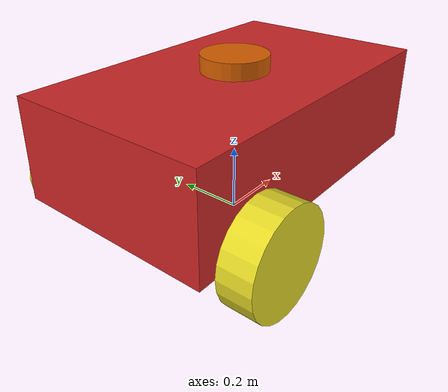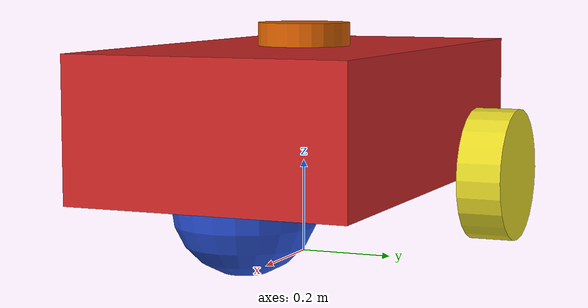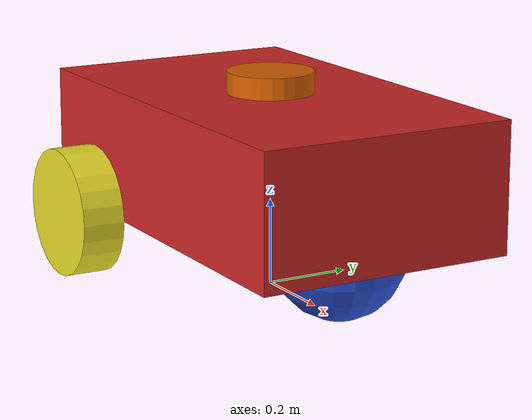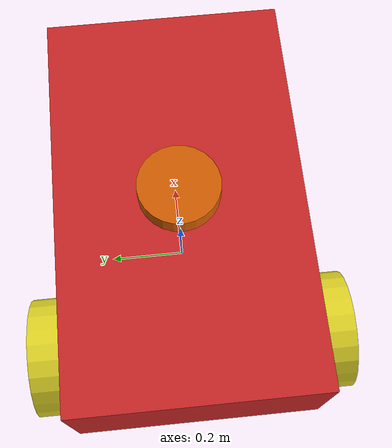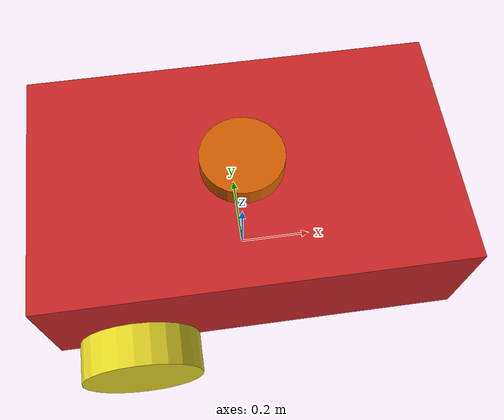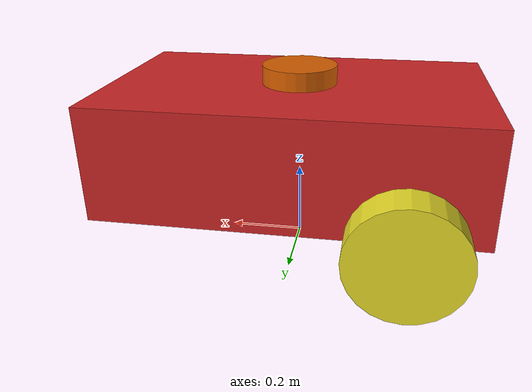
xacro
<?xml version="1.0"?>
<robot name="differential_drive_robot" xmlns:xacro="http://www.ros.org/wiki/xacro">

    <xacro:property name="pi_const" value="3.14159265" />

    <xacro:property name="a" value="1" />
    <xacro:property name="b" value="0.3" />
    <xacro:property name="c" value="0.6" />

    <xacro:property name="r" value="0.15" />

    <xacro:property name="d" value="0.1" />

    <xacro:property name="s1" value="${b/2+r}" />
    <xacro:property name="s2" value="${2*r}" />
    <xacro:property name="s3" value="${2*r}" />
    <xacro:property name="s4" value="${c/2+d/2}" />

    <xacro:property name="d1" value="2710.0" />
    <xacro:property name="d2" value="2710.0" />
    <xacro:property name="d3" value="2710.0" />

    <xacro:property name="m1" value="${d1*a*b*c}" />
    <xacro:property name="m2" value="${d2*pi_const*r*r*d}" />
    <xacro:property name="m3" value="${d3*(4.0/3.0)*pi_const*r*r*r}" />

    <xacro:property name="Ix_body" value="${(1/12)*m1*(b*b+c*c)}" />
    <xacro:property name="Iy_body" value="${(1/12)*m1*(a*a+b*b)}" />
    <xacro:property name="Iz_body" value="${(1/12)*m1*(a*a+c*c)}" />

    <xacro:property name="Iz_wheel" value="${0.5*m2*r*r}" />
    <xacro:property name="I_wheel" value="${(1.0/12.0)*m2*(3.0*r*r+d*d)}" />

    <xacro:property name="I_caster" value="${(2.0/5.0)*m3*r*r}" />

    <xacro:macro name="inertia_body">
        <inertial>
            <origin rpy="0 0 0" xyz="0 0 ${s1}"/>
            <mass value="${m1}"/>
            <inertia ixx="${Ix_body}" ixy="0.0" ixz="0.0" iyy="${Iy_body}" iyz="0" izz="${Iz_body}"/>
        </inertial>
    </xacro:macro>

    <xacro:macro name="inertia_wheel">
        <inertial>
            <origin rpy="1.570795 0 0" xyz="0 0 0"/>
            <mass value="${m2}"/>
            <inertia ixx="${I_wheel}" ixy="0.0" ixz="0.0" iyy="${I_wheel}" iyz="0" izz="${Iz_wheel}"/>
        </inertial>
    </xacro:macro>

    <xacro:macro name="inertia_caster">
        <inertial>
            <origin rpy="0 0 0" xyz="0 0 0"/>
            <mass value="${m3}"/>
            <inertia ixx="${I_caster}" ixy="0.0" ixz="0.0" iyy="${I_caster}" iyz="0" izz="${I_caster}"/>
        </inertial>
    </xacro:macro>

    <xacro:include filename="$(find mobile_robot)/model/robot.gazebo"/>

    <link name="base_footprint"></link>
    <joint name="body_link_joint" type="fixed">
        <parent link="base_footprint"/>
        <child link="body_link"/>
    </joint>

    <link name="body_link">
        <visual>
            <geometry>
                <box size="${a} ${c} ${b}"/>
            </geometry>
            <origin rpy="0 0 0" xyz="0 0 ${s1}"/>
        </visual>

        <collision>
            <geometry>
                <box size="${a} ${c} ${b}"/>
            </geometry>
            <origin rpy="0 0 0" xyz="0 0 ${s1}"/>
        </collision>
        <xacro:inertia_body/>
    </link>

    <joint name="wheel1_joint" type="continuous">
        <parent link="body_link"/>
        <child link="wheel1_link"/>
        <origin xyz="${-s2} ${-s4} ${r}" rpy="0 0 0"/>
        <axis xyz="0 1 0"/>
        <limit effort="50000" velocity="10"/>
        <dynamics damping="1.0" friction="1.0"/>
    </joint>

    <link name="wheel1_link">
        <visual>
            <origin rpy="1.570795 0 0" xyz="0 0 0"/>
            <geometry>
                <cylinder length="${d}" radius="${r}" />
            </geometry>
        </visual>

        <collision>
            <origin rpy="1.570795 0 0" xyz="0 0 0"/>
            <geometry>
                <cylinder length="${d}" radius="${r}" />
            </geometry>
        </collision>

        <xacro:inertia_wheel/>
    </link>

    <joint name="wheel2_joint" type="continuous">
        <parent link="body_link"/>
        <child link="wheel2_link"/>
        <origin xyz="${-s2} ${s4} ${r}" rpy="0 0 0"/>
        <axis xyz="0 1 0"/>
        <limit effort="50000" velocity="10"/>
        <dynamics damping="1.0" friction="1.0"/>
    </joint>

    <link name="wheel2_link">
        <visual>
            <origin rpy="1.570795 0 0" xyz="0 0 0"/>
            <geometry>
                <cylinder length="${d}" radius="${r}" />
            </geometry>
        </visual>

        <collision>
            <origin rpy="1.570795 0 0" xyz="0 0 0"/>
            <geometry>
                <cylinder length="${d}" radius="${r}" />
            </geometry>
        </collision>

        <xacro:inertia_wheel/>
    </link>

    <joint name="caster_joint" type="fixed">
        <parent link="body_link"/>
        <child link="caster_link"/>
        <origin xyz="${s3} 0 ${r}" rpy="0 0 0"/>
    </joint>

    <link name="caster_link">
        <visual>
            <origin rpy="0 0 0" xyz="0 0 0"/>
            <geometry>
                <sphere radius="${r}" />
            </geometry>
        </visual>

        <collision>
            <origin rpy="0 0 0" xyz="0 0 0"/>
            <geometry>
                <sphere radius="${r}" />
            </geometry>
        </collision>

        <xacro:inertia_caster/>
    </link>

    <!-- LIDAR -->

    <joint name="lidar_joint" type="fixed">
        <origin xyz="0 0 ${b+r}" rpy="0 0 0"/>
        <parent link="body_link"/>
        <child link="lidar_link"/>
        <axis xyz="0 1 0" rpy="0 0 0"/>
    </joint>

    <link name="lidar_link">
        <visual>
            <origin rpy="0 0 0.05" xyz="0 0 0"/>
            <geometry>
                <cylinder length="0.1" radius="0.1" />
            </geometry>
        </visual>

        <collision name="collision">
            <origin rpy="0 0 0.05" xyz="0 0 0"/>
            <geometry>
                <cylinder length="0.1" radius="0.1" />
            </geometry>
        </collision>

        <inertial>
            <mass value="1e-6"/>
            <origin rpy="0 0 0" xyz="0 0 0"/>
            <inertia ixx="1e-6" ixy="0.0" ixz="0.0" iyy="1e-6" iyz="0" izz="1e-6"/>
        </inertial>

    </link>

</robot>
